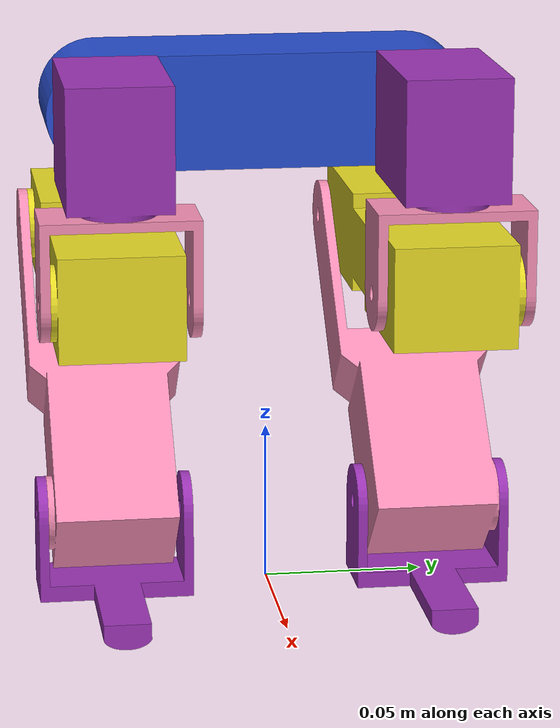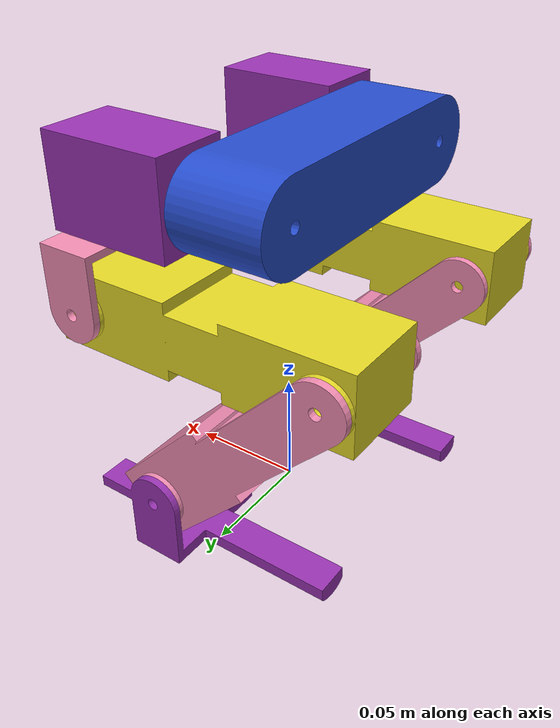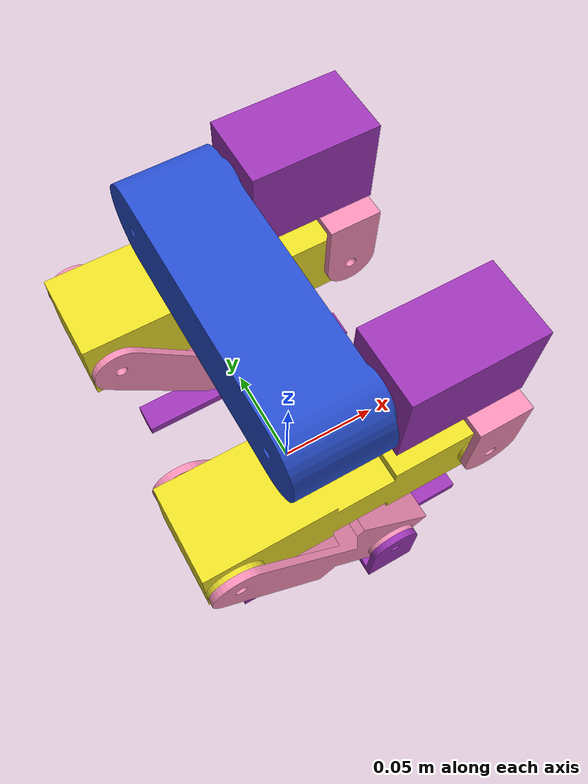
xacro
<?xml version="1.0"?>
<robot xmlns:xacro="http://www.ros.org/wiki/xacro">

    <!-- white, black, yellow, blue, pink, purple, orange -->

    <link name="base_link">
    </link>

    <joint name="chassis_joint" type="fixed">
        <parent link="base_link"/>
        <child link="chassis"/>
        <origin xyz="0 0 0.151614"/>
    </joint>

    <link name="chassis">
        <visual>
            <geometry>
                <mesh filename="file://$(find my_bot)/meshes/Chassis.stl"/>
            </geometry>
            <origin rpy="0 0 0" xyz="0 0 0"/>
            <material name="blue"/>
        </visual>
        <collision>
            <origin rpy="0 0 0" xyz="0 0 0"/>
            <geometry>
                <mesh filename="file://$(find my_bot)/meshes/Chassis.stl"/>
            </geometry>
        </collision>
    </link>

    <joint name="J1_L" type="revolute">
        <parent link="chassis"/>
        <child link="L1_L"/>
        <origin rpy="0 0 0" xyz="0 0.05 0"/>
        <axis xyz="1 0 0"/>
        <limit effort="1000.0" lower="-${pi/4}" upper="${pi/2}" velocity="0.5"/>
    </joint>

    <link name="L1_L">
        <visual>
            <geometry>
                <mesh filename="file://$(find my_bot)/meshes/1L.stl"/>
            </geometry>
            <origin rpy="0 0 0" xyz="0 -0.05 0"/>
            <material name="purple"/>
        </visual>
        <collision>
            <geometry>
                <mesh filename="file://$(find my_bot)/meshes/1L.stl"/>
            </geometry>
            <origin rpy="0 0 0" xyz="0 -0.05 0"/>
        </collision>
    </link>

    <joint name="J1_R" type="revolute">
        <parent link="chassis"/>
        <child link="L1_R"/>
        <origin rpy="0 0 0" xyz="0 -0.05 0"/>
        <axis xyz="1 0 0"/>
        <limit effort="1000.0" lower="-${pi/2}" upper="${pi/4}" velocity="0.5"/>
    </joint>

    <link name="L1_R">
        <visual>
            <geometry>
                <mesh filename="file://$(find my_bot)/meshes/1R.stl"/>
            </geometry>
            <origin rpy="0 0 0" xyz="0 0.05 0"/>
            <material name="purple"/>
        </visual>
        <collision>
            <geometry>
                <mesh filename="file://$(find my_bot)/meshes/1R.stl"/>
            </geometry>
            <origin rpy="0 0 0" xyz="0 0.05 0"/>
        </collision>
    </link>

    <joint name="J2_L" type="revolute">
        <parent link="L1_L"/>
        <child link="L2_L"/>
        <origin rpy="0 0 0" xyz="0.0451 0 0"/>
        <axis xyz="0 0 1"/>
        <limit effort="1000.0" lower="-${pi/2}" upper="${pi/8}" velocity="0.5"/>
    </joint>

    <link name="L2_L">
        <visual>
            <geometry>
                <mesh filename="file://$(find my_bot)/meshes/2L.stl"/>
            </geometry>
            <origin rpy="0 0 0" xyz="-0.0451 -0.05 0"/>
            <material name="pink"/>
        </visual>
        <collision>
            <geometry>
                <mesh filename="file://$(find my_bot)/meshes/2L.stl"/>
            </geometry>
            <origin rpy="0 0 0" xyz="-0.0451 -0.05 0"/>
        </collision>
    </link>

    <joint name="J2_R" type="revolute">
        <parent link="L1_R"/>
        <child link="L2_R"/>
        <origin rpy="0 0 0" xyz="0.0451 0 0"/>
        <axis xyz="0 0 1"/>
        <limit effort="1000.0" lower="-${pi/8}" upper="${pi/2}" velocity="0.5"/>
    </joint>

    <link name="L2_R">
        <visual>
            <geometry>
                <mesh filename="file://$(find my_bot)/meshes/2R.stl"/>
            </geometry>
            <origin rpy="0 0 0" xyz="-0.0451 0.05 0"/>
            <material name="pink"/>
        </visual>
        <collision>
            <geometry>
                <mesh filename="file://$(find my_bot)/meshes/2R.stl"/>
            </geometry>
            <origin rpy="0 0 0" xyz="-0.0451 0.05 0"/>
        </collision>
    </link>

    <joint name="J3_L" type="revolute">
        <parent link="L2_L"/>
        <child link="L3_L"/>
        <origin rpy="0 0 0" xyz="0 0 -0.047454"/>
        <axis xyz="0 1 0"/>
        <limit effort="1000.0" lower="-${pi}" upper="0.12" velocity="0.5"/>
    </joint>

    <link name="L3_L">
        <visual>
            <geometry>
                <mesh filename="file://$(find my_bot)/meshes/3L.stl"/>
            </geometry>
            <origin rpy="0 0 0" xyz="-0.0451 -0.05 0.047454"/>
            <material name="yellow"/>
        </visual>
        <collision>
            <geometry>
                <mesh filename="file://$(find my_bot)/meshes/3L.stl"/>
            </geometry>
            <origin rpy="0 0 0" xyz="-0.0451 -0.05 0.047454"/>
        </collision>
    </link>

    <joint name="J3_R" type="revolute">
        <parent link="L2_R"/>
        <child link="L3_R"/>
        <origin rpy="0 0 0" xyz="0 0 -0.047454"/>
        <axis xyz="0 1 0"/>
        <limit effort="1000.0" lower="-${pi}" upper="0.12" velocity="0.5"/>
    </joint>

    <link name="L3_R">
        <visual>
            <geometry>
                <mesh filename="file://$(find my_bot)/meshes/3R.stl"/>
            </geometry>
            <origin rpy="0 0 0" xyz="-0.0451 0.05 0.047454"/>
            <material name="yellow"/>
        </visual>
        <collision>
            <geometry>
                <mesh filename="file://$(find my_bot)/meshes/3R.stl"/>
            </geometry>
            <origin rpy="0 0 0" xyz="-0.0451 0.05 0.047454"/>
        </collision>
    </link>

    <joint name="J4_L" type="revolute">
        <parent link="L3_L"/>
        <child link="L4_L"/>
        <origin rpy="0 0 0" xyz="-0.107 0 0"/>
        <axis xyz="0 1 0"/>
        <limit effort="1000.0" lower="-0.25" upper="${pi}" velocity="0.5"/>
    </joint>

    <link name="L4_L">
        <visual>
            <geometry>
                <mesh filename="file://$(find my_bot)/meshes/4L.stl"/>
            </geometry>
            <origin rpy="0 0 0" xyz="0.0619 -0.05 0.047454"/>
            <material name="pink"/>
        </visual>
        <collision>
            <geometry>
                <mesh filename="file://$(find my_bot)/meshes/4L.stl"/>
            </geometry>
            <origin rpy="0 0 0" xyz="0.0619 -0.05 0.047454"/>
        </collision>
    </link>

    <joint name="J4_R" type="revolute">
        <parent link="L3_R"/>
        <child link="L4_R"/>
        <origin rpy="0 0 0" xyz="-0.107 0 0"/>
        <axis xyz="0 1 0"/>
        <limit effort="1000.0" lower="-0.25" upper="${pi}" velocity="0.5"/>
    </joint>

    <link name="L4_R">
        <visual>
            <geometry>
                <mesh filename="file://$(find my_bot)/meshes/4R.stl"/>
            </geometry>
            <origin rpy="0 0 0" xyz="0.0619 0.05 0.047454"/>
            <material name="pink"/>
        </visual>
        <collision>
            <geometry>
                <mesh filename="file://$(find my_bot)/meshes/4R.stl"/>
            </geometry>
            <origin rpy="0 0 0" xyz="0.0619 0.05 0.047454"/>
        </collision>
    </link>

    <joint name="J5_L" type="revolute">
        <parent link="L4_L"/>
        <child link="L5_L"/>
        <origin rpy="0 0 0" xyz="${0.107*sin(pi/4)} 0 -${0.107*sin(pi/4)}"/>
        <axis xyz="0 1 0"/>
        <limit effort="1000.0" lower="-${3*pi/4}" upper="${pi/4}" velocity="0.5"/>
    </joint>

    <link name="L5_L">
        <visual>
            <geometry>
                <mesh filename="file://$(find my_bot)/meshes/5L.stl"/>
            </geometry>
            <origin rpy="0 0 0" xyz="${(-0.107*sin(pi/4)) + 0.0619} -0.05 ${(0.107*sin(pi/4)) + 0.047454}"/>
            <material name="purple"/>
        </visual>
        <collision>
            <geometry>
                <mesh filename="file://$(find my_bot)/meshes/5L.stl"/>
            </geometry>
            <origin rpy="0 0 0" xyz="${(-0.107*sin(pi/4)) + 0.0619} -0.05 ${(0.107*sin(pi/4)) + 0.047454}"/>
        </collision>
    </link>

    <joint name="J5_R" type="revolute">
        <parent link="L4_R"/>
        <child link="L5_R"/>
        <origin rpy="0 0 0" xyz="${0.107*sin(pi/4)} 0 -${0.107*sin(pi/4)}"/>
        <axis xyz="0 1 0"/>
        <limit effort="1000.0" lower="-${3*pi/4}" upper="${pi/4}" velocity="0.5"/>
    </joint>

    <link name="L5_R">
        <visual>
            <geometry>
                <mesh filename="file://$(find my_bot)/meshes/5R.stl"/>
            </geometry>
            <origin rpy="0 0 0" xyz="${(-0.107*sin(pi/4)) + 0.0619} 0.05 ${(0.107*sin(pi/4)) + 0.047454}"/>
            <material name="purple"/>
        </visual>
        <collision>
            <geometry>
                <mesh filename="file://$(find my_bot)/meshes/5R.stl"/>
            </geometry>
            <origin rpy="0 0 0" xyz="${(-0.107*sin(pi/4)) + 0.0619} 0.05 ${(0.107*sin(pi/4)) + 0.047454}"/>
        </collision>
    </link>

</robot>
